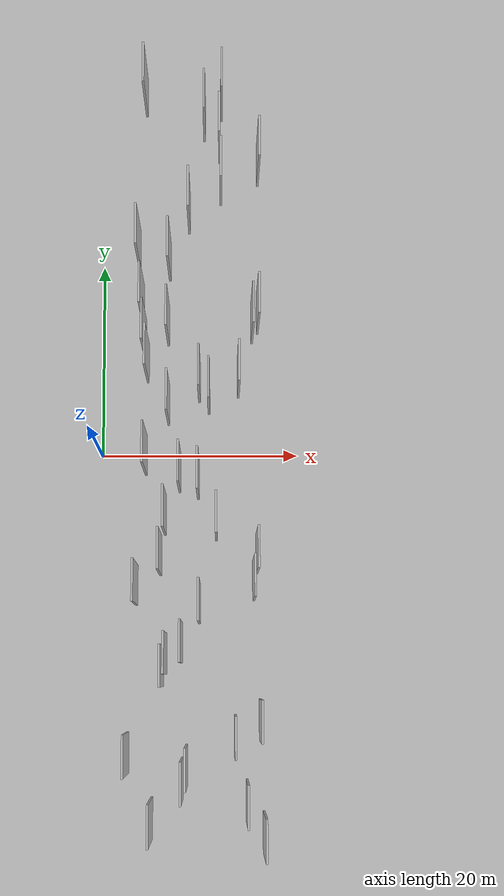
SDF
<?xml version="1.0" encoding="utf-8"?>

<sdf version="1.6">

   <world name="default">

      <gui fullscreen="0">

         <camera name="user_camera">

            <pose>-15 0 4.57585 0 0 0</pose>

            <view_controller>orbit</view_controller>

         </camera>

      </gui>

      <scene>

         <sky>

           <clouds>

             <speed>12</speed>

           </clouds>

         </sky>

         <ambient>0.4 0.4 0.4 1</ambient>

         <background>0.7 0.7 0.7 1</background>

         <shadows>1</shadows>

      </scene>

      <gravity>0 0 -9.8066</gravity>

      <magnetic_field>6e-06 2.3e-05 -4.2e-05</magnetic_field>

      <physics default="0" name="default_physics" type="ode">

         <ode>

            <solver>

               <type>quick</type>

               <iters>10</iters>

               <sor>1.0</sor>

               <use_dynamic_moi_rescaling>0</use_dynamic_moi_rescaling>

            </solver>

            <constraints>

               <cfm>0</cfm>

               <erp>0.2</erp>

               <contact_max_correcting_vel>100</contact_max_correcting_vel>

               <contact_surface_layer>0.001</contact_surface_layer>

            </constraints>

         </ode>

         <max_step_size>0.004</max_step_size>

         <real_time_factor>1</real_time_factor>

         <real_time_update_rate>250</real_time_update_rate>

      </physics>

      <light name="sun" type="directional">

         <cast_shadows>1</cast_shadows>

         <pose>0 0 10 0 0 0</pose>

         <diffuse>0.8 0.8 0.8 1</diffuse>

         <specular>0.2 0.2 0.2 1</specular>

         <attenuation>

            <range>1000</range>

            <constant>0.9</constant>

            <linear>0.01</linear>

            <quadratic>0.001</quadratic>

         </attenuation>

         <direction>-0.5 0.1 -0.9</direction>

      </light>

      <include>

         <name>ground_plane_1</name>

         <uri>model://HANNAS_ground_plane</uri>

         <pose>0 0 0  0 0 0</pose>

      </include>

      <include>

         <name>ground_plane_2</name>

         <uri>model://HANNAS_ground_plane</uri>

         <pose>100 0 0  0 0 0</pose>

      </include>

      <model name="HANNAS_wall_1">

         <static>1</static>

         <pose frame="">10.5256 34.1126 5.0 0.000000 0.000000 1.570796</pose>

         <link name="link">

            <pose frame="">0 0 5.00 0 0 0</pose>

            <collision name="collision">

               <geometry>

                  <box>

                     <size>4.00 0.2 10.00</size>

                  </box>

               </geometry>

               <max_contacts>10</max_contacts>

               <surface>

                  <contact>

                     <ode/>

                  </contact>

                  <bounce/>

                  <friction>

                     <torsional>

                        <ode/>

                     </torsional>

                     <ode/>

                  </friction>

               </surface>

            </collision>

            <visual name="visual">

               <cast_shadows>0</cast_shadows>

               <geometry>

                  <box>

                     <size>4.00 0.2 10.00</size>

                  </box>

               </geometry>

               <material>

                  <script>

                     <uri>model://HANNAS_wall/materials/scripts</uri>

                     <uri>model://HANNAS_wall/materials/textures</uri>

                     <name>vrc/HANNAS_wall</name>

                  </script>

               </material>

            </visual>

            <self_collide>0</self_collide>

            <enable_wind>0</enable_wind>

            <kinematic>0</kinematic>

         </link>

      </model>

      <model name="HANNAS_wall_2">

         <static>1</static>

         <pose frame="">13.4877 -28.1812 5.0 0.000000 0.000000 1.570796</pose>

         <link name="link">

            <pose frame="">0 0 5.00 0 0 0</pose>

            <collision name="collision">

               <geometry>

                  <box>

                     <size>4.00 0.2 10.00</size>

                  </box>

               </geometry>

               <max_contacts>10</max_contacts>

               <surface>

                  <contact>

                     <ode/>

                  </contact>

                  <bounce/>

                  <friction>

                     <torsional>

                        <ode/>

                     </torsional>

                     <ode/>

                  </friction>

               </surface>

            </collision>

            <visual name="visual">

               <cast_shadows>0</cast_shadows>

               <geometry>

                  <box>

                     <size>4.00 0.2 10.00</size>

                  </box>

               </geometry>

               <material>

                  <script>

                     <uri>model://HANNAS_wall/materials/scripts</uri>

                     <uri>model://HANNAS_wall/materials/textures</uri>

                     <name>vrc/HANNAS_wall</name>

                  </script>

               </material>

            </visual>

            <self_collide>0</self_collide>

            <enable_wind>0</enable_wind>

            <kinematic>0</kinematic>

         </link>

      </model>

      <model name="HANNAS_wall_3">

         <static>1</static>

         <pose frame="">3.0404 -29.8389 5.0 0.000000 0.000000 1.570796</pose>

         <link name="link">

            <pose frame="">0 0 5.00 0 0 0</pose>

            <collision name="collision">

               <geometry>

                  <box>

                     <size>4.00 0.2 10.00</size>

                  </box>

               </geometry>

               <max_contacts>10</max_contacts>

               <surface>

                  <contact>

                     <ode/>

                  </contact>

                  <bounce/>

                  <friction>

                     <torsional>

                        <ode/>

                     </torsional>

                     <ode/>

                  </friction>

               </surface>

            </collision>

            <visual name="visual">

               <cast_shadows>0</cast_shadows>

               <geometry>

                  <box>

                     <size>4.00 0.2 10.00</size>

                  </box>

               </geometry>

               <material>

                  <script>

                     <uri>model://HANNAS_wall/materials/scripts</uri>

                     <uri>model://HANNAS_wall/materials/textures</uri>

                     <name>vrc/HANNAS_wall</name>

                  </script>

               </material>

            </visual>

            <self_collide>0</self_collide>

            <enable_wind>0</enable_wind>

            <kinematic>0</kinematic>

         </link>

      </model>

      <model name="HANNAS_wall_4">

         <static>1</static>

         <pose frame="">15.8369 13.7697 5.0 0.000000 0.000000 1.570796</pose>

         <link name="link">

            <pose frame="">0 0 5.00 0 0 0</pose>

            <collision name="collision">

               <geometry>

                  <box>

                     <size>4.00 0.2 10.00</size>

                  </box>

               </geometry>

               <max_contacts>10</max_contacts>

               <surface>

                  <contact>

                     <ode/>

                  </contact>

                  <bounce/>

                  <friction>

                     <torsional>

                        <ode/>

                     </torsional>

                     <ode/>

                  </friction>

               </surface>

            </collision>

            <visual name="visual">

               <cast_shadows>0</cast_shadows>

               <geometry>

                  <box>

                     <size>4.00 0.2 10.00</size>

                  </box>

               </geometry>

               <material>

                  <script>

                     <uri>model://HANNAS_wall/materials/scripts</uri>

                     <uri>model://HANNAS_wall/materials/textures</uri>

                     <name>vrc/HANNAS_wall</name>

                  </script>

               </material>

            </visual>

            <self_collide>0</self_collide>

            <enable_wind>0</enable_wind>

            <kinematic>0</kinematic>

         </link>

      </model>

      <model name="HANNAS_wall_5">

         <static>1</static>

         <pose frame="">4.5931 36.8182 5.0 0.000000 0.000000 1.570796</pose>

         <link name="link">

            <pose frame="">0 0 5.00 0 0 0</pose>

            <collision name="collision">

               <geometry>

                  <box>

                     <size>4.00 0.2 10.00</size>

                  </box>

               </geometry>

               <max_contacts>10</max_contacts>

               <surface>

                  <contact>

                     <ode/>

                  </contact>

                  <bounce/>

                  <friction>

                     <torsional>

                        <ode/>

                     </torsional>

                     <ode/>

                  </friction>

               </surface>

            </collision>

            <visual name="visual">

               <cast_shadows>0</cast_shadows>

               <geometry>

                  <box>

                     <size>4.00 0.2 10.00</size>

                  </box>

               </geometry>

               <material>

                  <script>

                     <uri>model://HANNAS_wall/materials/scripts</uri>

                     <uri>model://HANNAS_wall/materials/textures</uri>

                     <name>vrc/HANNAS_wall</name>

                  </script>

               </material>

            </visual>

            <self_collide>0</self_collide>

            <enable_wind>0</enable_wind>

            <kinematic>0</kinematic>

         </link>

      </model>

      <model name="HANNAS_wall_6">

         <static>1</static>

         <pose frame="">4.6714 -0.6067 5.0 0.000000 0.000000 1.570796</pose>

         <link name="link">

            <pose frame="">0 0 5.00 0 0 0</pose>

            <collision name="collision">

               <geometry>

                  <box>

                     <size>4.00 0.2 10.00</size>

                  </box>

               </geometry>

               <max_contacts>10</max_contacts>

               <surface>

                  <contact>

                     <ode/>

                  </contact>

                  <bounce/>

                  <friction>

                     <torsional>

                        <ode/>

                     </torsional>

                     <ode/>

                  </friction>

               </surface>

            </collision>

            <visual name="visual">

               <cast_shadows>0</cast_shadows>

               <geometry>

                  <box>

                     <size>4.00 0.2 10.00</size>

                  </box>

               </geometry>

               <material>

                  <script>

                     <uri>model://HANNAS_wall/materials/scripts</uri>

                     <uri>model://HANNAS_wall/materials/textures</uri>

                     <name>vrc/HANNAS_wall</name>

                  </script>

               </material>

            </visual>

            <self_collide>0</self_collide>

            <enable_wind>0</enable_wind>

            <kinematic>0</kinematic>

         </link>

      </model>

      <model name="HANNAS_wall_7">

         <static>1</static>

         <pose frame="">8.0584 -2.4000 5.0 0.000000 0.000000 1.570796</pose>

         <link name="link">

            <pose frame="">0 0 5.00 0 0 0</pose>

            <collision name="collision">

               <geometry>

                  <box>

                     <size>4.00 0.2 10.00</size>

                  </box>

               </geometry>

               <max_contacts>10</max_contacts>

               <surface>

                  <contact>

                     <ode/>

                  </contact>

                  <bounce/>

                  <friction>

                     <torsional>

                        <ode/>

                     </torsional>

                     <ode/>

                  </friction>

               </surface>

            </collision>

            <visual name="visual">

               <cast_shadows>0</cast_shadows>

               <geometry>

                  <box>

                     <size>4.00 0.2 10.00</size>

                  </box>

               </geometry>

               <material>

                  <script>

                     <uri>model://HANNAS_wall/materials/scripts</uri>

                     <uri>model://HANNAS_wall/materials/textures</uri>

                     <name>vrc/HANNAS_wall</name>

                  </script>

               </material>

            </visual>

            <self_collide>0</self_collide>

            <enable_wind>0</enable_wind>

            <kinematic>0</kinematic>

         </link>

      </model>

      <model name="HANNAS_wall_8">

         <static>1</static>

         <pose frame="">3.8229 -13.5991 5.0 0.000000 0.000000 1.570796</pose>

         <link name="link">

            <pose frame="">0 0 5.00 0 0 0</pose>

            <collision name="collision">

               <geometry>

                  <box>

                     <size>4.00 0.2 10.00</size>

                  </box>

               </geometry>

               <max_contacts>10</max_contacts>

               <surface>

                  <contact>

                     <ode/>

                  </contact>

                  <bounce/>

                  <friction>

                     <torsional>

                        <ode/>

                     </torsional>

                     <ode/>

                  </friction>

               </surface>

            </collision>

            <visual name="visual">

               <cast_shadows>0</cast_shadows>

               <geometry>

                  <box>

                     <size>4.00 0.2 10.00</size>

                  </box>

               </geometry>

               <material>

                  <script>

                     <uri>model://HANNAS_wall/materials/scripts</uri>

                     <uri>model://HANNAS_wall/materials/textures</uri>

                     <name>vrc/HANNAS_wall</name>

                  </script>

               </material>

            </visual>

            <self_collide>0</self_collide>

            <enable_wind>0</enable_wind>

            <kinematic>0</kinematic>

         </link>

      </model>

      <model name="HANNAS_wall_9">

         <static>1</static>

         <pose frame="">6.7033 -20.3266 5.0 0.000000 0.000000 1.570796</pose>

         <link name="link">

            <pose frame="">0 0 5.00 0 0 0</pose>

            <collision name="collision">

               <geometry>

                  <box>

                     <size>4.00 0.2 10.00</size>

                  </box>

               </geometry>

               <max_contacts>10</max_contacts>

               <surface>

                  <contact>

                     <ode/>

                  </contact>

                  <bounce/>

                  <friction>

                     <torsional>

                        <ode/>

                     </torsional>

                     <ode/>

                  </friction>

               </surface>

            </collision>

            <visual name="visual">

               <cast_shadows>0</cast_shadows>

               <geometry>

                  <box>

                     <size>4.00 0.2 10.00</size>

                  </box>

               </geometry>

               <material>

                  <script>

                     <uri>model://HANNAS_wall/materials/scripts</uri>

                     <uri>model://HANNAS_wall/materials/textures</uri>

                     <name>vrc/HANNAS_wall</name>

                  </script>

               </material>

            </visual>

            <self_collide>0</self_collide>

            <enable_wind>0</enable_wind>

            <kinematic>0</kinematic>

         </link>

      </model>

      <model name="HANNAS_wall_10">

         <static>1</static>

         <pose frame="">16.2675 -37.4046 5.0 0.000000 0.000000 1.570796</pose>

         <link name="link">

            <pose frame="">0 0 5.00 0 0 0</pose>

            <collision name="collision">

               <geometry>

                  <box>

                     <size>4.00 0.2 10.00</size>

                  </box>

               </geometry>

               <max_contacts>10</max_contacts>

               <surface>

                  <contact>

                     <ode/>

                  </contact>

                  <bounce/>

                  <friction>

                     <torsional>

                        <ode/>

                     </torsional>

                     <ode/>

                  </friction>

               </surface>

            </collision>

            <visual name="visual">

               <cast_shadows>0</cast_shadows>

               <geometry>

                  <box>

                     <size>4.00 0.2 10.00</size>

                  </box>

               </geometry>

               <material>

                  <script>

                     <uri>model://HANNAS_wall/materials/scripts</uri>

                     <uri>model://HANNAS_wall/materials/textures</uri>

                     <name>vrc/HANNAS_wall</name>

                  </script>

               </material>

            </visual>

            <self_collide>0</self_collide>

            <enable_wind>0</enable_wind>

            <kinematic>0</kinematic>

         </link>

      </model>

      <model name="HANNAS_wall_11">

         <static>1</static>

         <pose frame="">15.6861 -10.5202 5.0 0.000000 0.000000 1.570796</pose>

         <link name="link">

            <pose frame="">0 0 5.00 0 0 0</pose>

            <collision name="collision">

               <geometry>

                  <box>

                     <size>4.00 0.2 10.00</size>

                  </box>

               </geometry>

               <max_contacts>10</max_contacts>

               <surface>

                  <contact>

                     <ode/>

                  </contact>

                  <bounce/>

                  <friction>

                     <torsional>

                        <ode/>

                     </torsional>

                     <ode/>

                  </friction>

               </surface>

            </collision>

            <visual name="visual">

               <cast_shadows>0</cast_shadows>

               <geometry>

                  <box>

                     <size>4.00 0.2 10.00</size>

                  </box>

               </geometry>

               <material>

                  <script>

                     <uri>model://HANNAS_wall/materials/scripts</uri>

                     <uri>model://HANNAS_wall/materials/textures</uri>

                     <name>vrc/HANNAS_wall</name>

                  </script>

               </material>

            </visual>

            <self_collide>0</self_collide>

            <enable_wind>0</enable_wind>

            <kinematic>0</kinematic>

         </link>

      </model>

      <model name="HANNAS_wall_12">

         <static>1</static>

         <pose frame="">12.2756 36.2900 5.0 0.000000 0.000000 1.570796</pose>

         <link name="link">

            <pose frame="">0 0 5.00 0 0 0</pose>

            <collision name="collision">

               <geometry>

                  <box>

                     <size>4.00 0.2 10.00</size>

                  </box>

               </geometry>

               <max_contacts>10</max_contacts>

               <surface>

                  <contact>

                     <ode/>

                  </contact>

                  <bounce/>

                  <friction>

                     <torsional>

                        <ode/>

                     </torsional>

                     <ode/>

                  </friction>

               </surface>

            </collision>

            <visual name="visual">

               <cast_shadows>0</cast_shadows>

               <geometry>

                  <box>

                     <size>4.00 0.2 10.00</size>

                  </box>

               </geometry>

               <material>

                  <script>

                     <uri>model://HANNAS_wall/materials/scripts</uri>

                     <uri>model://HANNAS_wall/materials/textures</uri>

                     <name>vrc/HANNAS_wall</name>

                  </script>

               </material>

            </visual>

            <self_collide>0</self_collide>

            <enable_wind>0</enable_wind>

            <kinematic>0</kinematic>

         </link>

      </model>

      <model name="HANNAS_wall_13">

         <static>1</static>

         <pose frame="">4.3178 14.8252 5.0 0.000000 0.000000 1.570796</pose>

         <link name="link">

            <pose frame="">0 0 5.00 0 0 0</pose>

            <collision name="collision">

               <geometry>

                  <box>

                     <size>4.00 0.2 10.00</size>

                  </box>

               </geometry>

               <max_contacts>10</max_contacts>

               <surface>

                  <contact>

                     <ode/>

                  </contact>

                  <bounce/>

                  <friction>

                     <torsional>

                        <ode/>

                     </torsional>

                     <ode/>

                  </friction>

               </surface>

            </collision>

            <visual name="visual">

               <cast_shadows>0</cast_shadows>

               <geometry>

                  <box>

                     <size>4.00 0.2 10.00</size>

                  </box>

               </geometry>

               <material>

                  <script>

                     <uri>model://HANNAS_wall/materials/scripts</uri>

                     <uri>model://HANNAS_wall/materials/textures</uri>

                     <name>vrc/HANNAS_wall</name>

                  </script>

               </material>

            </visual>

            <self_collide>0</self_collide>

            <enable_wind>0</enable_wind>

            <kinematic>0</kinematic>

         </link>

      </model>

      <model name="HANNAS_wall_14">

         <static>1</static>

         <pose frame="">8.7742 -31.0569 5.0 0.000000 0.000000 1.570796</pose>

         <link name="link">

            <pose frame="">0 0 5.00 0 0 0</pose>

            <collision name="collision">

               <geometry>

                  <box>

                     <size>4.00 0.2 10.00</size>

                  </box>

               </geometry>

               <max_contacts>10</max_contacts>

               <surface>

                  <contact>

                     <ode/>

                  </contact>

                  <bounce/>

                  <friction>

                     <torsional>

                        <ode/>

                     </torsional>

                     <ode/>

                  </friction>

               </surface>

            </collision>

            <visual name="visual">

               <cast_shadows>0</cast_shadows>

               <geometry>

                  <box>

                     <size>4.00 0.2 10.00</size>

                  </box>

               </geometry>

               <material>

                  <script>

                     <uri>model://HANNAS_wall/materials/scripts</uri>

                     <uri>model://HANNAS_wall/materials/textures</uri>

                     <name>vrc/HANNAS_wall</name>

                  </script>

               </material>

            </visual>

            <self_collide>0</self_collide>

            <enable_wind>0</enable_wind>

            <kinematic>0</kinematic>

         </link>

      </model>

      <model name="HANNAS_wall_15">

         <static>1</static>

         <pose frame="">9.8857 -3.0758 5.0 0.000000 0.000000 1.570796</pose>

         <link name="link">

            <pose frame="">0 0 5.00 0 0 0</pose>

            <collision name="collision">

               <geometry>

                  <box>

                     <size>4.00 0.2 10.00</size>

                  </box>

               </geometry>

               <max_contacts>10</max_contacts>

               <surface>

                  <contact>

                     <ode/>

                  </contact>

                  <bounce/>

                  <friction>

                     <torsional>

                        <ode/>

                     </torsional>

                     <ode/>

                  </friction>

               </surface>

            </collision>

            <visual name="visual">

               <cast_shadows>0</cast_shadows>

               <geometry>

                  <box>

                     <size>4.00 0.2 10.00</size>

                  </box>

               </geometry>

               <material>

                  <script>

                     <uri>model://HANNAS_wall/materials/scripts</uri>

                     <uri>model://HANNAS_wall/materials/textures</uri>

                     <name>vrc/HANNAS_wall</name>

                  </script>

               </material>

            </visual>

            <self_collide>0</self_collide>

            <enable_wind>0</enable_wind>

            <kinematic>0</kinematic>

         </link>

      </model>

      <model name="HANNAS_wall_16">

         <static>1</static>

         <pose frame="">15.2788 12.8191 5.0 0.000000 0.000000 1.570796</pose>

         <link name="link">

            <pose frame="">0 0 5.00 0 0 0</pose>

            <collision name="collision">

               <geometry>

                  <box>

                     <size>4.00 0.2 10.00</size>

                  </box>

               </geometry>

               <max_contacts>10</max_contacts>

               <surface>

                  <contact>

                     <ode/>

                  </contact>

                  <bounce/>

                  <friction>

                     <torsional>

                        <ode/>

                     </torsional>

                     <ode/>

                  </friction>

               </surface>

            </collision>

            <visual name="visual">

               <cast_shadows>0</cast_shadows>

               <geometry>

                  <box>

                     <size>4.00 0.2 10.00</size>

                  </box>

               </geometry>

               <material>

                  <script>

                     <uri>model://HANNAS_wall/materials/scripts</uri>

                     <uri>model://HANNAS_wall/materials/textures</uri>

                     <name>vrc/HANNAS_wall</name>

                  </script>

               </material>

            </visual>

            <self_collide>0</self_collide>

            <enable_wind>0</enable_wind>

            <kinematic>0</kinematic>

         </link>

      </model>

      <model name="HANNAS_wall_17">

         <static>1</static>

         <pose frame="">6.8915 12.5735 5.0 0.000000 0.000000 1.570796</pose>

         <link name="link">

            <pose frame="">0 0 5.00 0 0 0</pose>

            <collision name="collision">

               <geometry>

                  <box>

                     <size>4.00 0.2 10.00</size>

                  </box>

               </geometry>

               <max_contacts>10</max_contacts>

               <surface>

                  <contact>

                     <ode/>

                  </contact>

                  <bounce/>

                  <friction>

                     <torsional>

                        <ode/>

                     </torsional>

                     <ode/>

                  </friction>

               </surface>

            </collision>

            <visual name="visual">

               <cast_shadows>0</cast_shadows>

               <geometry>

                  <box>

                     <size>4.00 0.2 10.00</size>

                  </box>

               </geometry>

               <material>

                  <script>

                     <uri>model://HANNAS_wall/materials/scripts</uri>

                     <uri>model://HANNAS_wall/materials/textures</uri>

                     <name>vrc/HANNAS_wall</name>

                  </script>

               </material>

            </visual>

            <self_collide>0</self_collide>

            <enable_wind>0</enable_wind>

            <kinematic>0</kinematic>

         </link>

      </model>

      <model name="HANNAS_wall_18">

         <static>1</static>

         <pose frame="">12.0358 31.7779 5.0 0.000000 0.000000 1.570796</pose>

         <link name="link">

            <pose frame="">0 0 5.00 0 0 0</pose>

            <collision name="collision">

               <geometry>

                  <box>

                     <size>4.00 0.2 10.00</size>

                  </box>

               </geometry>

               <max_contacts>10</max_contacts>

               <surface>

                  <contact>

                     <ode/>

                  </contact>

                  <bounce/>

                  <friction>

                     <torsional>

                        <ode/>

                     </torsional>

                     <ode/>

                  </friction>

               </surface>

            </collision>

            <visual name="visual">

               <cast_shadows>0</cast_shadows>

               <geometry>

                  <box>

                     <size>4.00 0.2 10.00</size>

                  </box>

               </geometry>

               <material>

                  <script>

                     <uri>model://HANNAS_wall/materials/scripts</uri>

                     <uri>model://HANNAS_wall/materials/textures</uri>

                     <name>vrc/HANNAS_wall</name>

                  </script>

               </material>

            </visual>

            <self_collide>0</self_collide>

            <enable_wind>0</enable_wind>

            <kinematic>0</kinematic>

         </link>

      </model>

      <model name="HANNAS_wall_19">

         <static>1</static>

         <pose frame="">15.3527 -13.1862 5.0 0.000000 0.000000 1.570796</pose>

         <link name="link">

            <pose frame="">0 0 5.00 0 0 0</pose>

            <collision name="collision">

               <geometry>

                  <box>

                     <size>4.00 0.2 10.00</size>

                  </box>

               </geometry>

               <max_contacts>10</max_contacts>

               <surface>

                  <contact>

                     <ode/>

                  </contact>

                  <bounce/>

                  <friction>

                     <torsional>

                        <ode/>

                     </torsional>

                     <ode/>

                  </friction>

               </surface>

            </collision>

            <visual name="visual">

               <cast_shadows>0</cast_shadows>

               <geometry>

                  <box>

                     <size>4.00 0.2 10.00</size>

                  </box>

               </geometry>

               <material>

                  <script>

                     <uri>model://HANNAS_wall/materials/scripts</uri>

                     <uri>model://HANNAS_wall/materials/textures</uri>

                     <name>vrc/HANNAS_wall</name>

                  </script>

               </material>

            </visual>

            <self_collide>0</self_collide>

            <enable_wind>0</enable_wind>

            <kinematic>0</kinematic>

         </link>

      </model>

      <model name="HANNAS_wall_20">

         <static>1</static>

         <pose frame="">8.9780 24.3012 5.0 0.000000 0.000000 1.570796</pose>

         <link name="link">

            <pose frame="">0 0 5.00 0 0 0</pose>

            <collision name="collision">

               <geometry>

                  <box>

                     <size>4.00 0.2 10.00</size>

                  </box>

               </geometry>

               <max_contacts>10</max_contacts>

               <surface>

                  <contact>

                     <ode/>

                  </contact>

                  <bounce/>

                  <friction>

                     <torsional>

                        <ode/>

                     </torsional>

                     <ode/>

                  </friction>

               </surface>

            </collision>

            <visual name="visual">

               <cast_shadows>0</cast_shadows>

               <geometry>

                  <box>

                     <size>4.00 0.2 10.00</size>

                  </box>

               </geometry>

               <material>

                  <script>

                     <uri>model://HANNAS_wall/materials/scripts</uri>

                     <uri>model://HANNAS_wall/materials/textures</uri>

                     <name>vrc/HANNAS_wall</name>

                  </script>

               </material>

            </visual>

            <self_collide>0</self_collide>

            <enable_wind>0</enable_wind>

            <kinematic>0</kinematic>

         </link>

      </model>

      <model name="HANNAS_wall_21">

         <static>1</static>

         <pose frame="">15.9233 29.3379 5.0 0.000000 0.000000 1.570796</pose>

         <link name="link">

            <pose frame="">0 0 5.00 0 0 0</pose>

            <collision name="collision">

               <geometry>

                  <box>

                     <size>4.00 0.2 10.00</size>

                  </box>

               </geometry>

               <max_contacts>10</max_contacts>

               <surface>

                  <contact>

                     <ode/>

                  </contact>

                  <bounce/>

                  <friction>

                     <torsional>

                        <ode/>

                     </torsional>

                     <ode/>

                  </friction>

               </surface>

            </collision>

            <visual name="visual">

               <cast_shadows>0</cast_shadows>

               <geometry>

                  <box>

                     <size>4.00 0.2 10.00</size>

                  </box>

               </geometry>

               <material>

                  <script>

                     <uri>model://HANNAS_wall/materials/scripts</uri>

                     <uri>model://HANNAS_wall/materials/textures</uri>

                     <name>vrc/HANNAS_wall</name>

                  </script>

               </material>

            </visual>

            <self_collide>0</self_collide>

            <enable_wind>0</enable_wind>

            <kinematic>0</kinematic>

         </link>

      </model>

      <model name="HANNAS_wall_22">

         <static>1</static>

         <pose frame="">9.9951 6.7586 5.0 0.000000 0.000000 1.570796</pose>

         <link name="link">

            <pose frame="">0 0 5.00 0 0 0</pose>

            <collision name="collision">

               <geometry>

                  <box>

                     <size>4.00 0.2 10.00</size>

                  </box>

               </geometry>

               <max_contacts>10</max_contacts>

               <surface>

                  <contact>

                     <ode/>

                  </contact>

                  <bounce/>

                  <friction>

                     <torsional>

                        <ode/>

                     </torsional>

                     <ode/>

                  </friction>

               </surface>

            </collision>

            <visual name="visual">

               <cast_shadows>0</cast_shadows>

               <geometry>

                  <box>

                     <size>4.00 0.2 10.00</size>

                  </box>

               </geometry>

               <material>

                  <script>

                     <uri>model://HANNAS_wall/materials/scripts</uri>

                     <uri>model://HANNAS_wall/materials/textures</uri>

                     <name>vrc/HANNAS_wall</name>

                  </script>

               </material>

            </visual>

            <self_collide>0</self_collide>

            <enable_wind>0</enable_wind>

            <kinematic>0</kinematic>

         </link>

      </model>

      <model name="HANNAS_wall_23">

         <static>1</static>

         <pose frame="">15.9466 -26.7106 5.0 0.000000 0.000000 1.570796</pose>

         <link name="link">

            <pose frame="">0 0 5.00 0 0 0</pose>

            <collision name="collision">

               <geometry>

                  <box>

                     <size>4.00 0.2 10.00</size>

                  </box>

               </geometry>

               <max_contacts>10</max_contacts>

               <surface>

                  <contact>

                     <ode/>

                  </contact>

                  <bounce/>

                  <friction>

                     <torsional>

                        <ode/>

                     </torsional>

                     <ode/>

                  </friction>

               </surface>

            </collision>

            <visual name="visual">

               <cast_shadows>0</cast_shadows>

               <geometry>

                  <box>

                     <size>4.00 0.2 10.00</size>

                  </box>

               </geometry>

               <material>

                  <script>

                     <uri>model://HANNAS_wall/materials/scripts</uri>

                     <uri>model://HANNAS_wall/materials/textures</uri>

                     <name>vrc/HANNAS_wall</name>

                  </script>

               </material>

            </visual>

            <self_collide>0</self_collide>

            <enable_wind>0</enable_wind>

            <kinematic>0</kinematic>

         </link>

      </model>

      <model name="HANNAS_wall_24">

         <static>1</static>

         <pose frame="">8.2410 -19.2474 5.0 0.000000 0.000000 1.570796</pose>

         <link name="link">

            <pose frame="">0 0 5.00 0 0 0</pose>

            <collision name="collision">

               <geometry>

                  <box>

                     <size>4.00 0.2 10.00</size>

                  </box>

               </geometry>

               <max_contacts>10</max_contacts>

               <surface>

                  <contact>

                     <ode/>

                  </contact>

                  <bounce/>

                  <friction>

                     <torsional>

                        <ode/>

                     </torsional>

                     <ode/>

                  </friction>

               </surface>

            </collision>

            <visual name="visual">

               <cast_shadows>0</cast_shadows>

               <geometry>

                  <box>

                     <size>4.00 0.2 10.00</size>

                  </box>

               </geometry>

               <material>

                  <script>

                     <uri>model://HANNAS_wall/materials/scripts</uri>

                     <uri>model://HANNAS_wall/materials/textures</uri>

                     <name>vrc/HANNAS_wall</name>

                  </script>

               </material>

            </visual>

            <self_collide>0</self_collide>

            <enable_wind>0</enable_wind>

            <kinematic>0</kinematic>

         </link>

      </model>

      <model name="HANNAS_wall_25">

         <static>1</static>

         <pose frame="">14.6267 -34.3859 5.0 0.000000 0.000000 1.570796</pose>

         <link name="link">

            <pose frame="">0 0 5.00 0 0 0</pose>

            <collision name="collision">

               <geometry>

                  <box>

                     <size>4.00 0.2 10.00</size>

                  </box>

               </geometry>

               <max_contacts>10</max_contacts>

               <surface>

                  <contact>

                     <ode/>

                  </contact>

                  <bounce/>

                  <friction>

                     <torsional>

                        <ode/>

                     </torsional>

                     <ode/>

                  </friction>

               </surface>

            </collision>

            <visual name="visual">

               <cast_shadows>0</cast_shadows>

               <geometry>

                  <box>

                     <size>4.00 0.2 10.00</size>

                  </box>

               </geometry>

               <material>

                  <script>

                     <uri>model://HANNAS_wall/materials/scripts</uri>

                     <uri>model://HANNAS_wall/materials/textures</uri>

                     <name>vrc/HANNAS_wall</name>

                  </script>

               </material>

            </visual>

            <self_collide>0</self_collide>

            <enable_wind>0</enable_wind>

            <kinematic>0</kinematic>

         </link>

      </model>

      <model name="HANNAS_wall_26">

         <static>1</static>

         <pose frame="">6.9344 4.4036 5.0 0.000000 0.000000 1.570796</pose>

         <link name="link">

            <pose frame="">0 0 5.00 0 0 0</pose>

            <collision name="collision">

               <geometry>

                  <box>

                     <size>4.00 0.2 10.00</size>

                  </box>

               </geometry>

               <max_contacts>10</max_contacts>

               <surface>

                  <contact>

                     <ode/>

                  </contact>

                  <bounce/>

                  <friction>

                     <torsional>

                        <ode/>

                     </torsional>

                     <ode/>

                  </friction>

               </surface>

            </collision>

            <visual name="visual">

               <cast_shadows>0</cast_shadows>

               <geometry>

                  <box>

                     <size>4.00 0.2 10.00</size>

                  </box>

               </geometry>

               <material>

                  <script>

                     <uri>model://HANNAS_wall/materials/scripts</uri>

                     <uri>model://HANNAS_wall/materials/textures</uri>

                     <name>vrc/HANNAS_wall</name>

                  </script>

               </material>

            </visual>

            <self_collide>0</self_collide>

            <enable_wind>0</enable_wind>

            <kinematic>0</kinematic>

         </link>

      </model>

      <model name="HANNAS_wall_27">

         <static>1</static>

         <pose frame="">11.6655 -7.2170 5.0 0.000000 0.000000 1.570796</pose>

         <link name="link">

            <pose frame="">0 0 5.00 0 0 0</pose>

            <collision name="collision">

               <geometry>

                  <box>

                     <size>4.00 0.2 10.00</size>

                  </box>

               </geometry>

               <max_contacts>10</max_contacts>

               <surface>

                  <contact>

                     <ode/>

                  </contact>

                  <bounce/>

                  <friction>

                     <torsional>

                        <ode/>

                     </torsional>

                     <ode/>

                  </friction>

               </surface>

            </collision>

            <visual name="visual">

               <cast_shadows>0</cast_shadows>

               <geometry>

                  <box>

                     <size>4.00 0.2 10.00</size>

                  </box>

               </geometry>

               <material>

                  <script>

                     <uri>model://HANNAS_wall/materials/scripts</uri>

                     <uri>model://HANNAS_wall/materials/textures</uri>

                     <name>vrc/HANNAS_wall</name>

                  </script>

               </material>

            </visual>

            <self_collide>0</self_collide>

            <enable_wind>0</enable_wind>

            <kinematic>0</kinematic>

         </link>

      </model>

      <model name="HANNAS_wall_28">

         <static>1</static>

         <pose frame="">6.6180 -6.6603 5.0 0.000000 0.000000 1.570796</pose>

         <link name="link">

            <pose frame="">0 0 5.00 0 0 0</pose>

            <collision name="collision">

               <geometry>

                  <box>

                     <size>4.00 0.2 10.00</size>

                  </box>

               </geometry>

               <max_contacts>10</max_contacts>

               <surface>

                  <contact>

                     <ode/>

                  </contact>

                  <bounce/>

                  <friction>

                     <torsional>

                        <ode/>

                     </torsional>

                     <ode/>

                  </friction>

               </surface>

            </collision>

            <visual name="visual">

               <cast_shadows>0</cast_shadows>

               <geometry>

                  <box>

                     <size>4.00 0.2 10.00</size>

                  </box>

               </geometry>

               <material>

                  <script>

                     <uri>model://HANNAS_wall/materials/scripts</uri>

                     <uri>model://HANNAS_wall/materials/textures</uri>

                     <name>vrc/HANNAS_wall</name>

                  </script>

               </material>

            </visual>

            <self_collide>0</self_collide>

            <enable_wind>0</enable_wind>

            <kinematic>0</kinematic>

         </link>

      </model>

      <model name="HANNAS_wall_29">

         <static>1</static>

         <pose frame="">8.3488 -32.2933 5.0 0.000000 0.000000 1.570796</pose>

         <link name="link">

            <pose frame="">0 0 5.00 0 0 0</pose>

            <collision name="collision">

               <geometry>

                  <box>

                     <size>4.00 0.2 10.00</size>

                  </box>

               </geometry>

               <max_contacts>10</max_contacts>

               <surface>

                  <contact>

                     <ode/>

                  </contact>

                  <bounce/>

                  <friction>

                     <torsional>

                        <ode/>

                     </torsional>

                     <ode/>

                  </friction>

               </surface>

            </collision>

            <visual name="visual">

               <cast_shadows>0</cast_shadows>

               <geometry>

                  <box>

                     <size>4.00 0.2 10.00</size>

                  </box>

               </geometry>

               <material>

                  <script>

                     <uri>model://HANNAS_wall/materials/scripts</uri>

                     <uri>model://HANNAS_wall/materials/textures</uri>

                     <name>vrc/HANNAS_wall</name>

                  </script>

               </material>

            </visual>

            <self_collide>0</self_collide>

            <enable_wind>0</enable_wind>

            <kinematic>0</kinematic>

         </link>

      </model>

      <model name="HANNAS_wall_30">

         <static>1</static>

         <pose frame="">4.8380 8.7919 5.0 0.000000 0.000000 1.570796</pose>

         <link name="link">

            <pose frame="">0 0 5.00 0 0 0</pose>

            <collision name="collision">

               <geometry>

                  <box>

                     <size>4.00 0.2 10.00</size>

                  </box>

               </geometry>

               <max_contacts>10</max_contacts>

               <surface>

                  <contact>

                     <ode/>

                  </contact>

                  <bounce/>

                  <friction>

                     <torsional>

                        <ode/>

                     </torsional>

                     <ode/>

                  </friction>

               </surface>

            </collision>

            <visual name="visual">

               <cast_shadows>0</cast_shadows>

               <geometry>

                  <box>

                     <size>4.00 0.2 10.00</size>

                  </box>

               </geometry>

               <material>

                  <script>

                     <uri>model://HANNAS_wall/materials/scripts</uri>

                     <uri>model://HANNAS_wall/materials/textures</uri>

                     <name>vrc/HANNAS_wall</name>

                  </script>

               </material>

            </visual>

            <self_collide>0</self_collide>

            <enable_wind>0</enable_wind>

            <kinematic>0</kinematic>

         </link>

      </model>

      <model name="HANNAS_wall_31">

         <static>1</static>

         <pose frame="">12.1867 27.2796 5.0 0.000000 0.000000 1.570796</pose>

         <link name="link">

            <pose frame="">0 0 5.00 0 0 0</pose>

            <collision name="collision">

               <geometry>

                  <box>

                     <size>4.00 0.2 10.00</size>

                  </box>

               </geometry>

               <max_contacts>10</max_contacts>

               <surface>

                  <contact>

                     <ode/>

                  </contact>

                  <bounce/>

                  <friction>

                     <torsional>

                        <ode/>

                     </torsional>

                     <ode/>

                  </friction>

               </surface>

            </collision>

            <visual name="visual">

               <cast_shadows>0</cast_shadows>

               <geometry>

                  <box>

                     <size>4.00 0.2 10.00</size>

                  </box>

               </geometry>

               <material>

                  <script>

                     <uri>model://HANNAS_wall/materials/scripts</uri>

                     <uri>model://HANNAS_wall/materials/textures</uri>

                     <name>vrc/HANNAS_wall</name>

                  </script>

               </material>

            </visual>

            <self_collide>0</self_collide>

            <enable_wind>0</enable_wind>

            <kinematic>0</kinematic>

         </link>

      </model>

      <model name="HANNAS_wall_32">

         <static>1</static>

         <pose frame="">9.9975 -15.4242 5.0 0.000000 0.000000 1.570796</pose>

         <link name="link">

            <pose frame="">0 0 5.00 0 0 0</pose>

            <collision name="collision">

               <geometry>

                  <box>

                     <size>4.00 0.2 10.00</size>

                  </box>

               </geometry>

               <max_contacts>10</max_contacts>

               <surface>

                  <contact>

                     <ode/>

                  </contact>

                  <bounce/>

                  <friction>

                     <torsional>

                        <ode/>

                     </torsional>

                     <ode/>

                  </friction>

               </surface>

            </collision>

            <visual name="visual">

               <cast_shadows>0</cast_shadows>

               <geometry>

                  <box>

                     <size>4.00 0.2 10.00</size>

                  </box>

               </geometry>

               <material>

                  <script>

                     <uri>model://HANNAS_wall/materials/scripts</uri>

                     <uri>model://HANNAS_wall/materials/textures</uri>

                     <name>vrc/HANNAS_wall</name>

                  </script>

               </material>

            </visual>

            <self_collide>0</self_collide>

            <enable_wind>0</enable_wind>

            <kinematic>0</kinematic>

         </link>

      </model>

      <model name="HANNAS_wall_33">

         <static>1</static>

         <pose frame="">5.3767 -36.0988 5.0 0.000000 0.000000 1.570796</pose>

         <link name="link">

            <pose frame="">0 0 5.00 0 0 0</pose>

            <collision name="collision">

               <geometry>

                  <box>

                     <size>4.00 0.2 10.00</size>

                  </box>

               </geometry>

               <max_contacts>10</max_contacts>

               <surface>

                  <contact>

                     <ode/>

                  </contact>

                  <bounce/>

                  <friction>

                     <torsional>

                        <ode/>

                     </torsional>

                     <ode/>

                  </friction>

               </surface>

            </collision>

            <visual name="visual">

               <cast_shadows>0</cast_shadows>

               <geometry>

                  <box>

                     <size>4.00 0.2 10.00</size>

                  </box>

               </geometry>

               <material>

                  <script>

                     <uri>model://HANNAS_wall/materials/scripts</uri>

                     <uri>model://HANNAS_wall/materials/textures</uri>

                     <name>vrc/HANNAS_wall</name>

                  </script>

               </material>

            </visual>

            <self_collide>0</self_collide>

            <enable_wind>0</enable_wind>

            <kinematic>0</kinematic>

         </link>

      </model>

      <model name="HANNAS_wall_34">

         <static>1</static>

         <pose frame="">6.1614 -10.6423 5.0 0.000000 0.000000 1.570796</pose>

         <link name="link">

            <pose frame="">0 0 5.00 0 0 0</pose>

            <collision name="collision">

               <geometry>

                  <box>

                     <size>4.00 0.2 10.00</size>

                  </box>

               </geometry>

               <max_contacts>10</max_contacts>

               <surface>

                  <contact>

                     <ode/>

                  </contact>

                  <bounce/>

                  <friction>

                     <torsional>

                        <ode/>

                     </torsional>

                     <ode/>

                  </friction>

               </surface>

            </collision>

            <visual name="visual">

               <cast_shadows>0</cast_shadows>

               <geometry>

                  <box>

                     <size>4.00 0.2 10.00</size>

                  </box>

               </geometry>

               <material>

                  <script>

                     <uri>model://HANNAS_wall/materials/scripts</uri>

                     <uri>model://HANNAS_wall/materials/textures</uri>

                     <name>vrc/HANNAS_wall</name>

                  </script>

               </material>

            </visual>

            <self_collide>0</self_collide>

            <enable_wind>0</enable_wind>

            <kinematic>0</kinematic>

         </link>

      </model>

      <model name="HANNAS_wall_35">

         <static>1</static>

         <pose frame="">10.9498 5.5772 5.0 0.000000 0.000000 1.570796</pose>

         <link name="link">

            <pose frame="">0 0 5.00 0 0 0</pose>

            <collision name="collision">

               <geometry>

                  <box>

                     <size>4.00 0.2 10.00</size>

                  </box>

               </geometry>

               <max_contacts>10</max_contacts>

               <surface>

                  <contact>

                     <ode/>

                  </contact>

                  <bounce/>

                  <friction>

                     <torsional>

                        <ode/>

                     </torsional>

                     <ode/>

                  </friction>

               </surface>

            </collision>

            <visual name="visual">

               <cast_shadows>0</cast_shadows>

               <geometry>

                  <box>

                     <size>4.00 0.2 10.00</size>

                  </box>

               </geometry>

               <material>

                  <script>

                     <uri>model://HANNAS_wall/materials/scripts</uri>

                     <uri>model://HANNAS_wall/materials/textures</uri>

                     <name>vrc/HANNAS_wall</name>

                  </script>

               </material>

            </visual>

            <self_collide>0</self_collide>

            <enable_wind>0</enable_wind>

            <kinematic>0</kinematic>

         </link>

      </model>

      <model name="HANNAS_wall_36">

         <static>1</static>

         <pose frame="">13.9029 7.2193 5.0 0.000000 0.000000 1.570796</pose>

         <link name="link">

            <pose frame="">0 0 5.00 0 0 0</pose>

            <collision name="collision">

               <geometry>

                  <box>

                     <size>4.00 0.2 10.00</size>

                  </box>

               </geometry>

               <max_contacts>10</max_contacts>

               <surface>

                  <contact>

                     <ode/>

                  </contact>

                  <bounce/>

                  <friction>

                     <torsional>

                        <ode/>

                     </torsional>

                     <ode/>

                  </friction>

               </surface>

            </collision>

            <visual name="visual">

               <cast_shadows>0</cast_shadows>

               <geometry>

                  <box>

                     <size>4.00 0.2 10.00</size>

                  </box>

               </geometry>

               <material>

                  <script>

                     <uri>model://HANNAS_wall/materials/scripts</uri>

                     <uri>model://HANNAS_wall/materials/textures</uri>

                     <name>vrc/HANNAS_wall</name>

                  </script>

               </material>

            </visual>

            <self_collide>0</self_collide>

            <enable_wind>0</enable_wind>

            <kinematic>0</kinematic>

         </link>

      </model>

      <model name="HANNAS_wall_37">

         <static>1</static>

         <pose frame="">4.5493 11.2542 5.0 0.000000 0.000000 1.570796</pose>

         <link name="link">

            <pose frame="">0 0 5.00 0 0 0</pose>

            <collision name="collision">

               <geometry>

                  <box>

                     <size>4.00 0.2 10.00</size>

                  </box>

               </geometry>

               <max_contacts>10</max_contacts>

               <surface>

                  <contact>

                     <ode/>

                  </contact>

                  <bounce/>

                  <friction>

                     <torsional>

                        <ode/>

                     </torsional>

                     <ode/>

                  </friction>

               </surface>

            </collision>

            <visual name="visual">

               <cast_shadows>0</cast_shadows>

               <geometry>

                  <box>

                     <size>4.00 0.2 10.00</size>

                  </box>

               </geometry>

               <material>

                  <script>

                     <uri>model://HANNAS_wall/materials/scripts</uri>

                     <uri>model://HANNAS_wall/materials/textures</uri>

                     <name>vrc/HANNAS_wall</name>

                  </script>

               </material>

            </visual>

            <self_collide>0</self_collide>

            <enable_wind>0</enable_wind>

            <kinematic>0</kinematic>

         </link>

      </model>

      <model name="HANNAS_wall_38">

         <static>1</static>

         <pose frame="">7.0222 19.3150 5.0 0.000000 0.000000 1.570796</pose>

         <link name="link">

            <pose frame="">0 0 5.00 0 0 0</pose>

            <collision name="collision">

               <geometry>

                  <box>

                     <size>4.00 0.2 10.00</size>

                  </box>

               </geometry>

               <max_contacts>10</max_contacts>

               <surface>

                  <contact>

                     <ode/>

                  </contact>

                  <bounce/>

                  <friction>

                     <torsional>

                        <ode/>

                     </torsional>

                     <ode/>

                  </friction>

               </surface>

            </collision>

            <visual name="visual">

               <cast_shadows>0</cast_shadows>

               <geometry>

                  <box>

                     <size>4.00 0.2 10.00</size>

                  </box>

               </geometry>

               <material>

                  <script>

                     <uri>model://HANNAS_wall/materials/scripts</uri>

                     <uri>model://HANNAS_wall/materials/textures</uri>

                     <name>vrc/HANNAS_wall</name>

                  </script>

               </material>

            </visual>

            <self_collide>0</self_collide>

            <enable_wind>0</enable_wind>

            <kinematic>0</kinematic>

         </link>

      </model>

      <model name="HANNAS_wall_39">

         <static>1</static>

         <pose frame="">3.9378 20.5733 5.0 0.000000 0.000000 1.570796</pose>

         <link name="link">

            <pose frame="">0 0 5.00 0 0 0</pose>

            <collision name="collision">

               <geometry>

                  <box>

                     <size>4.00 0.2 10.00</size>

                  </box>

               </geometry>

               <max_contacts>10</max_contacts>

               <surface>

                  <contact>

                     <ode/>

                  </contact>

                  <bounce/>

                  <friction>

                     <torsional>

                        <ode/>

                     </torsional>

                     <ode/>

                  </friction>

               </surface>

            </collision>

            <visual name="visual">

               <cast_shadows>0</cast_shadows>

               <geometry>

                  <box>

                     <size>4.00 0.2 10.00</size>

                  </box>

               </geometry>

               <material>

                  <script>

                     <uri>model://HANNAS_wall/materials/scripts</uri>

                     <uri>model://HANNAS_wall/materials/textures</uri>

                     <name>vrc/HANNAS_wall</name>

                  </script>

               </material>

            </visual>

            <self_collide>0</self_collide>

            <enable_wind>0</enable_wind>

            <kinematic>0</kinematic>

         </link>

      </model>

      <model name="HANNAS_wall_40">

         <static>1</static>

         <pose frame="">6.3700 -21.5272 5.0 0.000000 0.000000 1.570796</pose>

         <link name="link">

            <pose frame="">0 0 5.00 0 0 0</pose>

            <collision name="collision">

               <geometry>

                  <box>

                     <size>4.00 0.2 10.00</size>

                  </box>

               </geometry>

               <max_contacts>10</max_contacts>

               <surface>

                  <contact>

                     <ode/>

                  </contact>

                  <bounce/>

                  <friction>

                     <torsional>

                        <ode/>

                     </torsional>

                     <ode/>

                  </friction>

               </surface>

            </collision>

            <visual name="visual">

               <cast_shadows>0</cast_shadows>

               <geometry>

                  <box>

                     <size>4.00 0.2 10.00</size>

                  </box>

               </geometry>

               <material>

                  <script>

                     <uri>model://HANNAS_wall/materials/scripts</uri>

                     <uri>model://HANNAS_wall/materials/textures</uri>

                     <name>vrc/HANNAS_wall</name>

                  </script>

               </material>

            </visual>

            <self_collide>0</self_collide>

            <enable_wind>0</enable_wind>

            <kinematic>0</kinematic>

         </link>

      </model>

   </world>

</sdf>
